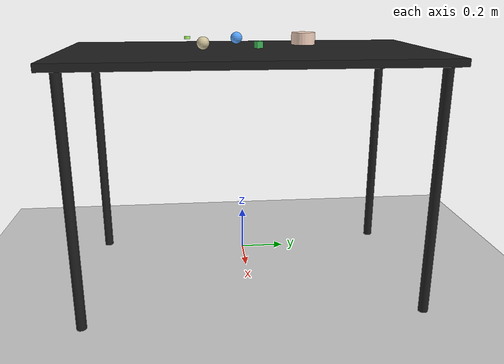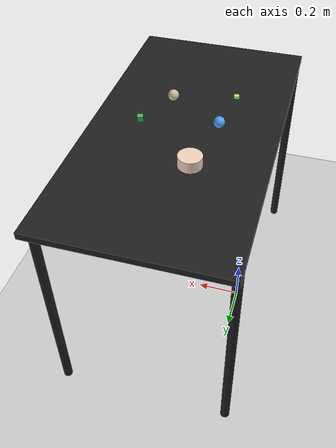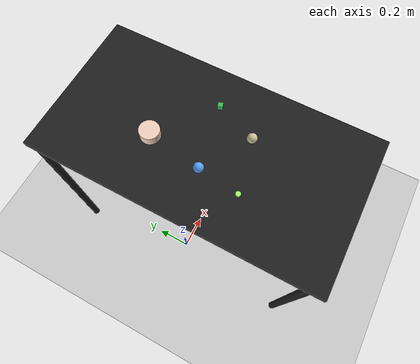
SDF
<?xml version="1.0" ?>
<sdf version="1.6">
  <world name="arm_world">
    <plugin filename="gz-sim-physics-system" name="gz::sim::systems::Physics">
      <engine>
        <filename>libgz-physics-bullet-featherstone-plugin.so</filename>
      </engine>
    </plugin>
    <plugin filename="gz-sim-user-commands-system" name="gz::sim::systems::UserCommands"/>
    <plugin filename="gz-sim-scene-broadcaster-system" name="gz::sim::systems::SceneBroadcaster"/>
    <plugin filename="gz-sim-sensors-system" name="gz::sim::systems::Sensors">
      <render_engine>ogre2</render_engine>
    </plugin>
    <gravity>0.0 0.0 -9.8</gravity>
    <scene>
      <shadows>false</shadows>
    </scene>
    <gui>
      <camera name="user_camera">
        <pose>0.75 -0.75 1.4 0 0.29 2.21</pose>
      </camera>
    </gui>
    <include>
      <uri>https://fuel.gazebosim.org/1.0/OpenRobotics/models/Sun</uri>
    </include>
    <model name="table">
      <static>true</static>
      <include>
        <uri>model://table</uri>
      </include>
      <pose>0.29 0 0 0 0 1.5708</pose>
    </model>
    <model name="ground_plane">
      <static>true</static>
      <link name="link">
        <collision name="collision">
          <geometry>
            <plane>
              <normal>0 0 1</normal>
            </plane>
          </geometry>
          <surface>
            <friction>
              <ode>
                <mu>1.0</mu>
                <mu2>1.0</mu2>
              </ode>
            </friction>
          </surface>
        </collision>
        <visual name="visual">
          <geometry>
            <plane>
              <normal>0 0 1</normal>
              <size>100 100</size>
            </plane>
          </geometry>
          <material>
            <ambient>0.8 0.8 0.8 1</ambient>
            <diffuse>0.8 0.8 0.8 1</diffuse>
            <specular>0.8 0.8 0.8 1</specular>
          </material>
        </visual>
      </link>
    </model>
    <model name="cube_s_0">
      <pose>0.475 0.023 1.05 0 0 1.89</pose>
      <link name="cube_s_0_link">
        <inertial>
          <mass>0.05</mass>
          <inertia>
            <ixx>2.04e-7</ixx>
            <iyy>2.04e-7</iyy>
            <izz>3.9e-8</izz>
            <ixy>0</ixy>
            <ixz>0</ixz>
            <iyz>0</iyz>
          </inertia>
        </inertial>
        <collision name="cube_s_0_collision">
          <geometry>
            <box>
              <size>0.025 0.025 0.025</size>
            </box>
          </geometry>
          <surface>
            <friction>
              <ode>
                <mu>0.8</mu>
                <mu2>0.8</mu2>
                <fdir1>0 0 1</fdir1>
                <slip1>0.001</slip1>
                <slip2>0.001</slip2>
              </ode>
              <torsional>
                <coefficient>0.1</coefficient>
                <surface_radius>0.015</surface_radius>
                <use_patch_radius>true</use_patch_radius>
              </torsional>
            </friction>
            <contact>
              <ode>
                <kp>1e5</kp>
                <kd>10</kd>
                <max_vel>0.1</max_vel>
                <min_depth>0.001</min_depth>
                <soft_cfm>0.01</soft_cfm>
                <soft_erp>0.2</soft_erp>
              </ode>
            </contact>
            <bounce>
              <restitution_coefficient>0.2</restitution_coefficient>
              <threshold>0.01</threshold>
            </bounce>
          </surface>
        </collision>
        <visual name="cube_s_0_visual">
          <geometry>
            <box>
              <size>0.025 0.025 0.025</size>
            </box>
          </geometry>
          <material>
            <ambient>0.24 0.72 0.34 1</ambient>
            <diffuse>0.24 0.72 0.34 1</diffuse>
          </material>
        </visual>
        <velocity_decay>
          <linear>1</linear>
          <angular>1</angular>
        </velocity_decay>
      </link>
    </model>
    <model name="cylinder_s_1">
      <pose>0.118 -0.246 1.05 0 0 2.31</pose>
      <link name="cylinder_s_1_link">
        <inertial>
          <mass>0.05</mass>
          <inertia>
            <ixx>2.04e-7</ixx>
            <iyy>2.04e-7</iyy>
            <izz>3.9e-8</izz>
            <ixy>0</ixy>
            <ixz>0</ixz>
            <iyz>0</iyz>
          </inertia>
        </inertial>
        <collision name="cylinder_s_1_collision">
          <geometry>
            <cylinder>
              <radius>0.0125</radius>
              <length>0.0125</length>
            </cylinder>
          </geometry>
          <surface>
            <friction>
              <ode>
                <mu>0.8</mu>
                <mu2>0.8</mu2>
                <fdir1>0 0 1</fdir1>
                <slip1>0.001</slip1>
                <slip2>0.001</slip2>
              </ode>
              <torsional>
                <coefficient>0.1</coefficient>
                <surface_radius>0.015</surface_radius>
                <use_patch_radius>true</use_patch_radius>
              </torsional>
            </friction>
            <contact>
              <ode>
                <kp>1e5</kp>
                <kd>10</kd>
                <max_vel>0.1</max_vel>
                <min_depth>0.001</min_depth>
                <soft_cfm>0.01</soft_cfm>
                <soft_erp>0.2</soft_erp>
              </ode>
            </contact>
            <bounce>
              <restitution_coefficient>0.2</restitution_coefficient>
              <threshold>0.01</threshold>
            </bounce>
          </surface>
        </collision>
        <visual name="cylinder_s_1_visual">
          <geometry>
            <cylinder>
              <radius>0.0125</radius>
              <length>0.0125</length>
            </cylinder>
          </geometry>
          <material>
            <ambient>0.65 0.99 0.42 1</ambient>
            <diffuse>0.65 0.99 0.42 1</diffuse>
          </material>
        </visual>
        <velocity_decay>
          <linear>1</linear>
          <angular>1</angular>
        </velocity_decay>
      </link>
    </model>
    <model name="cylinder_l_2">
      <pose>0.198 0.244 1.05 0 0 3.43</pose>
      <link name="cylinder_l_2_link">
        <inertial>
          <mass>0.05</mass>
          <inertia>
            <ixx>2.04e-7</ixx>
            <iyy>2.04e-7</iyy>
            <izz>3.9e-8</izz>
            <ixy>0</ixy>
            <ixz>0</ixz>
            <iyz>0</iyz>
          </inertia>
        </inertial>
        <collision name="cylinder_l_2_collision">
          <geometry>
            <cylinder>
              <radius>0.05</radius>
              <length>0.05</length>
            </cylinder>
          </geometry>
          <surface>
            <friction>
              <ode>
                <mu>0.8</mu>
                <mu2>0.8</mu2>
                <fdir1>0 0 1</fdir1>
                <slip1>0.001</slip1>
                <slip2>0.001</slip2>
              </ode>
              <torsional>
                <coefficient>0.1</coefficient>
                <surface_radius>0.015</surface_radius>
                <use_patch_radius>true</use_patch_radius>
              </torsional>
            </friction>
            <contact>
              <ode>
                <kp>1e5</kp>
                <kd>10</kd>
                <max_vel>0.1</max_vel>
                <min_depth>0.001</min_depth>
                <soft_cfm>0.01</soft_cfm>
                <soft_erp>0.2</soft_erp>
              </ode>
            </contact>
            <bounce>
              <restitution_coefficient>0.2</restitution_coefficient>
              <threshold>0.01</threshold>
            </bounce>
          </surface>
        </collision>
        <visual name="cylinder_l_2_visual">
          <geometry>
            <cylinder>
              <radius>0.05</radius>
              <length>0.05</length>
            </cylinder>
          </geometry>
          <material>
            <ambient>0.96 0.83 0.75 1</ambient>
            <diffuse>0.96 0.83 0.75 1</diffuse>
          </material>
        </visual>
        <velocity_decay>
          <linear>1</linear>
          <angular>1</angular>
        </velocity_decay>
      </link>
    </model>
    <model name="sphere_m_3">
      <pose>0.39 -0.183 1.05 0 0 0.35</pose>
      <link name="sphere_m_3_link">
        <inertial>
          <mass>0.05</mass>
          <inertia>
            <ixx>2.04e-7</ixx>
            <iyy>2.04e-7</iyy>
            <izz>3.9e-8</izz>
            <ixy>0</ixy>
            <ixz>0</ixz>
            <iyz>0</iyz>
          </inertia>
        </inertial>
        <collision name="sphere_m_3_collision">
          <geometry>
            <sphere>
              <radius>0.025</radius>
            </sphere>
          </geometry>
          <surface>
            <friction>
              <ode>
                <mu>0.8</mu>
                <mu2>0.8</mu2>
                <fdir1>0 0 1</fdir1>
                <slip1>0.001</slip1>
                <slip2>0.001</slip2>
              </ode>
              <torsional>
                <coefficient>0.1</coefficient>
                <surface_radius>0.015</surface_radius>
                <use_patch_radius>true</use_patch_radius>
              </torsional>
            </friction>
            <contact>
              <ode>
                <kp>1e5</kp>
                <kd>10</kd>
                <max_vel>0.1</max_vel>
                <min_depth>0.001</min_depth>
                <soft_cfm>0.01</soft_cfm>
                <soft_erp>0.2</soft_erp>
              </ode>
            </contact>
            <bounce>
              <restitution_coefficient>0.2</restitution_coefficient>
              <threshold>0.01</threshold>
            </bounce>
          </surface>
        </collision>
        <visual name="sphere_m_3_visual">
          <geometry>
            <sphere>
              <radius>0.025</radius>
            </sphere>
          </geometry>
          <material>
            <ambient>0.81 0.76 0.61 1</ambient>
            <diffuse>0.81 0.76 0.61 1</diffuse>
          </material>
        </visual>
        <velocity_decay>
          <linear>1</linear>
          <angular>1</angular>
        </velocity_decay>
      </link>
    </model>
    <model name="sphere_m_4">
      <pose>0.148 -0.036 1.05 0 0 5.07</pose>
      <link name="sphere_m_4_link">
        <inertial>
          <mass>0.05</mass>
          <inertia>
            <ixx>2.04e-7</ixx>
            <iyy>2.04e-7</iyy>
            <izz>3.9e-8</izz>
            <ixy>0</ixy>
            <ixz>0</ixz>
            <iyz>0</iyz>
          </inertia>
        </inertial>
        <collision name="sphere_m_4_collision">
          <geometry>
            <sphere>
              <radius>0.025</radius>
            </sphere>
          </geometry>
          <surface>
            <friction>
              <ode>
                <mu>0.8</mu>
                <mu2>0.8</mu2>
                <fdir1>0 0 1</fdir1>
                <slip1>0.001</slip1>
                <slip2>0.001</slip2>
              </ode>
              <torsional>
                <coefficient>0.1</coefficient>
                <surface_radius>0.015</surface_radius>
                <use_patch_radius>true</use_patch_radius>
              </torsional>
            </friction>
            <contact>
              <ode>
                <kp>1e5</kp>
                <kd>10</kd>
                <max_vel>0.1</max_vel>
                <min_depth>0.001</min_depth>
                <soft_cfm>0.01</soft_cfm>
                <soft_erp>0.2</soft_erp>
              </ode>
            </contact>
            <bounce>
              <restitution_coefficient>0.2</restitution_coefficient>
              <threshold>0.01</threshold>
            </bounce>
          </surface>
        </collision>
        <visual name="sphere_m_4_visual">
          <geometry>
            <sphere>
              <radius>0.025</radius>
            </sphere>
          </geometry>
          <material>
            <ambient>0.33 0.64 0.99 1</ambient>
            <diffuse>0.33 0.64 0.99 1</diffuse>
          </material>
        </visual>
        <velocity_decay>
          <linear>1</linear>
          <angular>1</angular>
        </velocity_decay>
      </link>
    </model>
  </world>
</sdf>

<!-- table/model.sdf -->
<sdf version="1.5">
  <model name="table">
    <static>true</static>
    <link name="link">
      <collision name="surface">
        <pose>0 0 1.0 0 0 0</pose>
        <geometry>
          <box>
            <size>1.5 0.8 0.03</size>
          </box>
        </geometry>
        <surface>
          <friction>
            <ode>
              <mu>0.6</mu>
              <mu2>0.6</mu2>
            </ode>
          </friction>
        </surface>
      </collision>
      <visual name="surface">
        <pose>0 0 1.0 0 0 0</pose>
        <geometry>
          <box>
            <size>1.5 0.8 0.03</size>
          </box>
        </geometry>
        <material>
          <script>
            <uri>file://media/materials/scripts/gazebo.material</uri>
            <name>Gazebo/Black</name>
          </script>
        </material>
      </visual>
      <collision name="front_left_leg">
        <pose>0.68 0.38 0.5 0 0 0</pose>
        <geometry>
          <cylinder>
            <radius>0.02</radius>
            <length>1.0</length>
          </cylinder>
        </geometry>
      </collision>
      <visual name="front_left_leg">
        <pose>0.68 0.38 0.5 0 0 0</pose>
        <geometry>
          <cylinder>
            <radius>0.02</radius>
            <length>1.0</length>
          </cylinder>
        </geometry>
        <material>
          <script>
            <uri>file://media/materials/scripts/gazebo.material</uri>
            <name>Gazebo/Black</name>
          </script>
        </material>
      </visual>
      <collision name="front_right_leg">
        <pose>0.68 -0.38 0.5 0 0 0</pose>
        <geometry>
          <cylinder>
            <radius>0.02</radius>
            <length>1.0</length>
          </cylinder>
        </geometry>
      </collision>
      <visual name="front_right_leg">
        <pose>0.68 -0.38 0.5 0 0 0</pose>
        <geometry>
          <cylinder>
            <radius>0.02</radius>
            <length>1.0</length>
          </cylinder>
        </geometry>
        <material>
          <script>
            <uri>file://media/materials/scripts/gazebo.material</uri>
            <name>Gazebo/Black</name>
          </script>
        </material>
      </visual>
      <collision name="back_right_leg">
        <pose>-0.68 -0.38 0.5 0 0 0</pose>
        <geometry>
          <cylinder>
            <radius>0.02</radius>
            <length>1.0</length>
          </cylinder>
        </geometry>
      </collision>
      <visual name="back_right_leg">
        <pose>-0.68 -0.38 0.5 0 0 0</pose>
        <geometry>
          <cylinder>
            <radius>0.02</radius>
            <length>1.0</length>
          </cylinder>
        </geometry>
        <material>
          <script>
            <uri>file://media/materials/scripts/gazebo.material</uri>
            <name>Gazebo/Black</name>
          </script>
        </material>
      </visual>
      <collision name="back_left_leg">
        <pose>-0.68 0.38 0.5 0 0 0</pose>
        <geometry>
          <cylinder>
            <radius>0.02</radius>
            <length>1.0</length>
          </cylinder>
        </geometry>
      </collision>
      <visual name="back_left_leg">
        <pose>-0.68 0.38 0.5 0 0 0</pose>
        <geometry>
          <cylinder>
            <radius>0.02</radius>
            <length>1.0</length>
          </cylinder>
        </geometry>
        <material>
          <script>
            <uri>file://media/materials/scripts/gazebo.material</uri>
            <name>Gazebo/Black</name>
          </script>
        </material>
      </visual>
    </link>
  </model>
</sdf>
